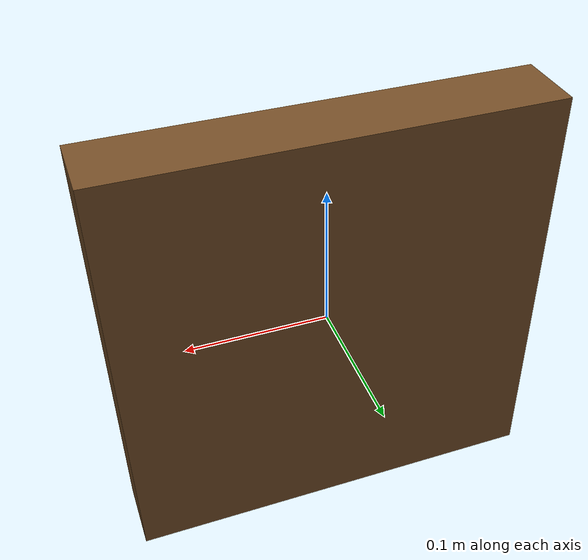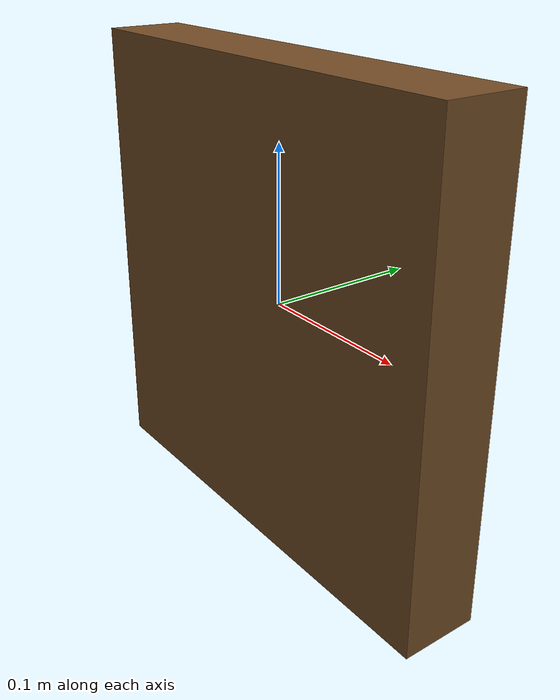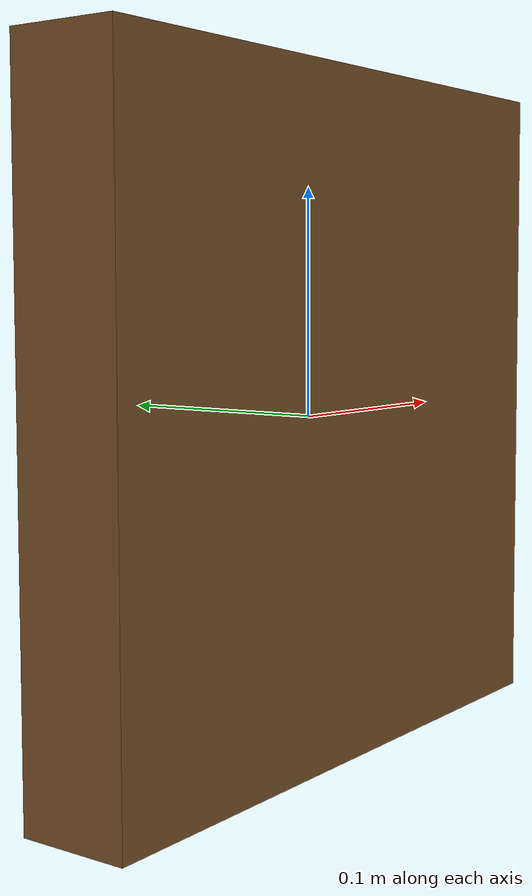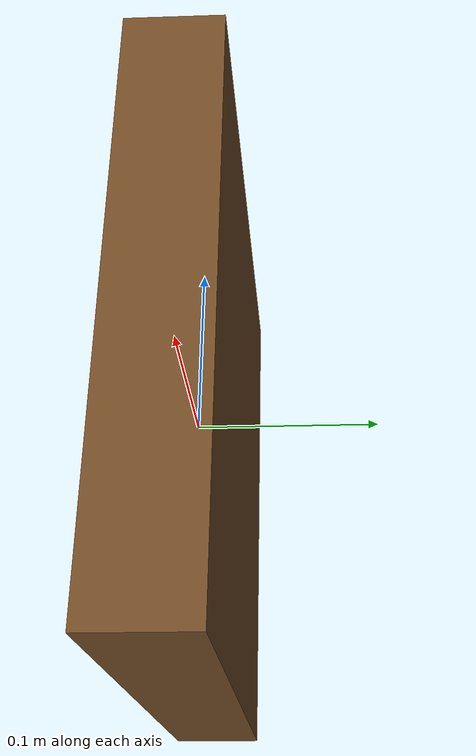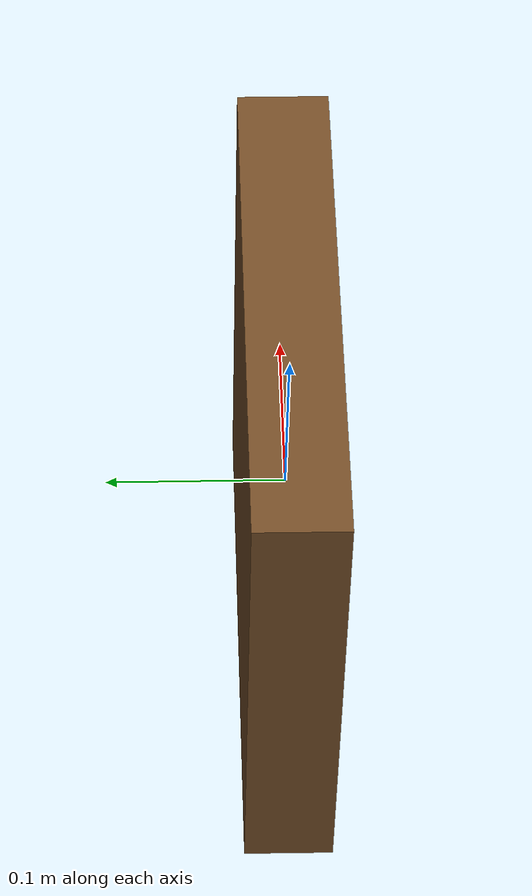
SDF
<?xml version="1.0"?>
<sdf version="1.7">
  <model name="wall30cm">
    <static>true</static>
    <link name="link">
      <collision name="collision">
        <geometry>
          <box>
            <size>0.3 0.05 0.3</size>
          </box>
        </geometry>
      </collision>

      <visual name="visual">
        <geometry>
          <box>
            <size>0.3 0.05 0.3</size>
          </box>
        </geometry>

        <!-- Material portable (sense Ogre scripts) -->
        <material>
          <ambient>0.45 0.30 0.15 1</ambient>
          <diffuse>0.45 0.30 0.15 1</diffuse>
          <specular>0.05 0.05 0.05 1</specular>
        </material>
      </visual>
    </link>
  </model>
</sdf>
